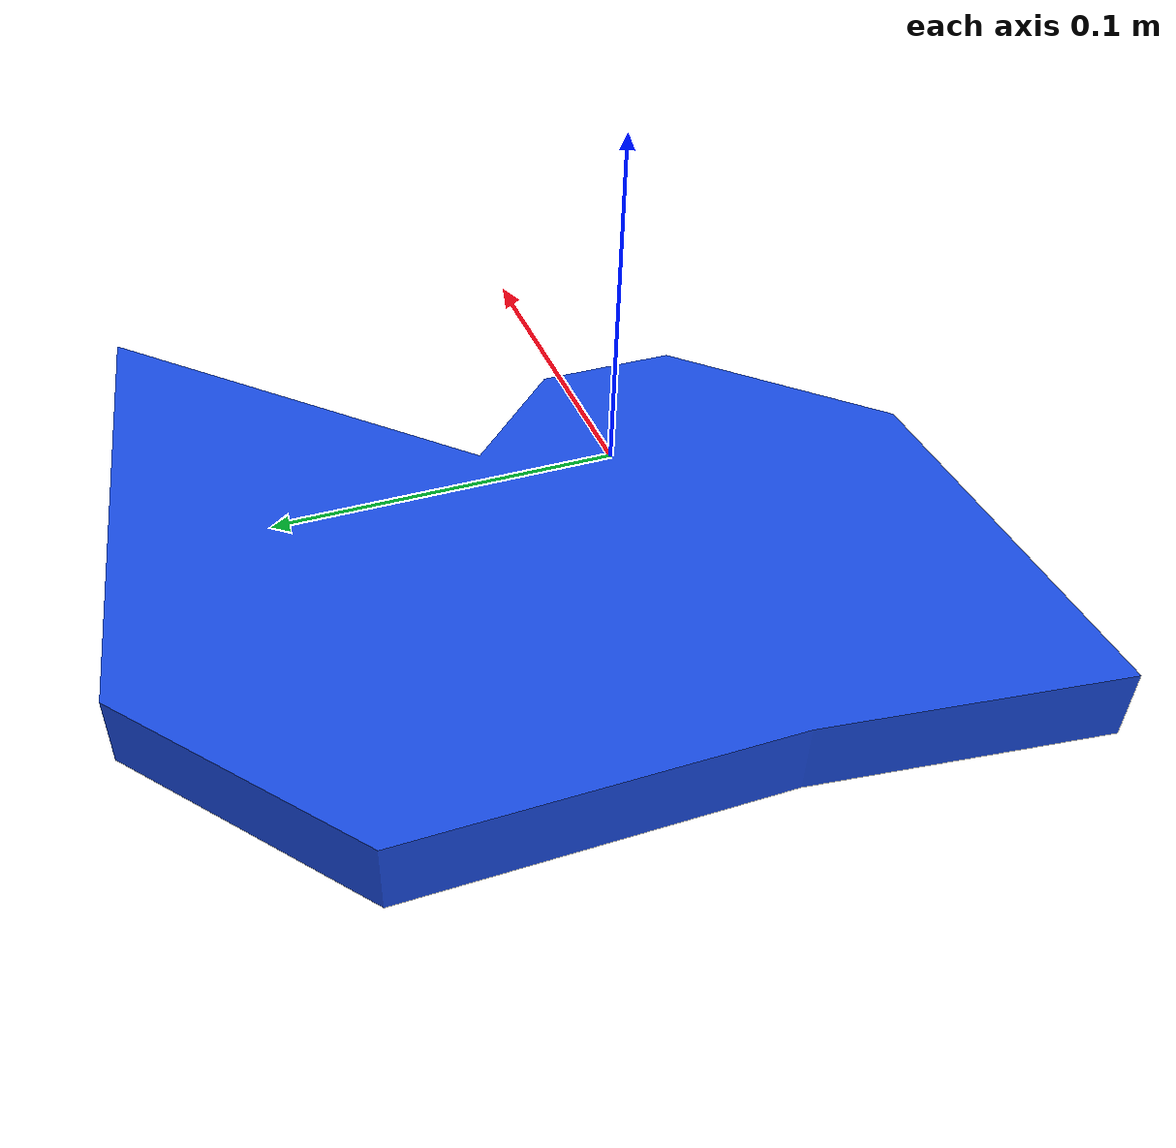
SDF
<sdf version="1.7">
  <model name="weird_polygon">
    <link name="weird_polygon_link">
      <inertial>
        <mass>0.351500</mass>
        <inertia>
          <ixx>1.561246e-03</ixx>
          <iyy>1.429433e-03</iyy>
          <izz>2.967246e-03</izz>
          <ixy>0</ixy>
          <ixz>0</ixz>
          <iyz>0</iyz>
        </inertia>
      </inertial>
      <visual name="visual">
        <geometry>
          <mesh>
            <uri>weird_polygon.obj</uri>
          </mesh>
        </geometry>
                <material>
                    <ambient>0.050 0.150 0.450 1.000</ambient>
                    <diffuse>0.100 0.300 0.900 1.000</diffuse>
                    <specular>0.2 0.2 0.2 1</specular>
                    <emissive>0 0 0 1</emissive>
                </material>
      </visual>
      <collision name="collision">
        <geometry>
          <mesh>
            <uri>weird_polygon.obj</uri>
          </mesh>
        </geometry>
      </collision>
    </link>
  </model>
</sdf>
